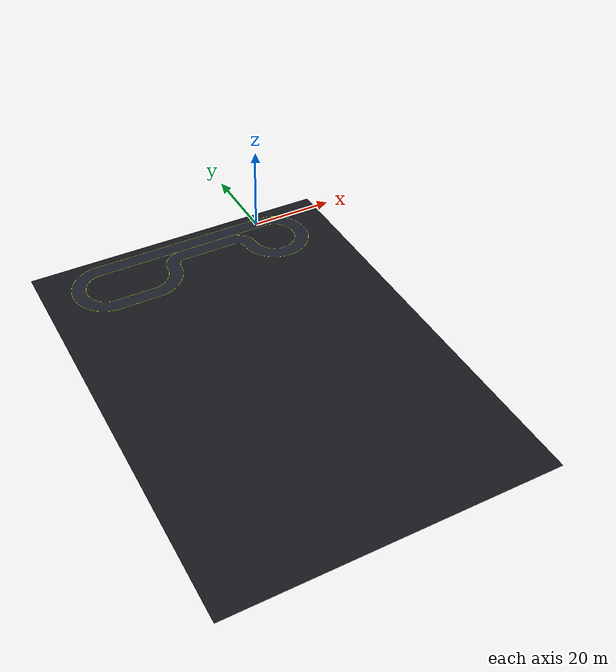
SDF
<sdf version="1.9">
  <model name="highbay_track">
    <static>true</static>

    <link name="link">
      <visual name="visual">
        <geometry>
          <mesh>
            <uri>model://highbay_track/meshes/highbay_track.dae</uri>
          </mesh>
        </geometry>
      </visual>

      <collision name="collision">
        <geometry>
          <mesh>
            <uri>model://highbay_track/meshes/highbay_track.dae</uri>
          </mesh>
        </geometry>
      </collision>
    </link>
  </model>
</sdf>
